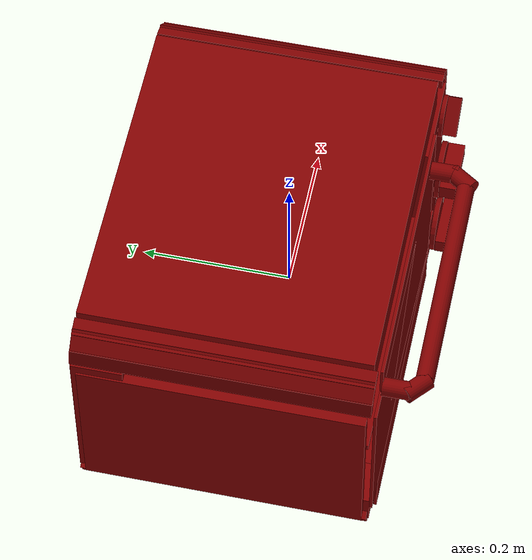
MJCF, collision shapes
<?xml version='1.0' encoding='UTF-8'?>
<mujoco model="model">
  <option timestep="0.002" gravity="0.0 0.0 -9.81"/>
  <compiler angle="radian"/>
  <asset>
    <mesh file="visuals/door.obj" name="door_vis"/>
    <mesh file="visuals/knob_function.obj" name="knob_function_vis"/>
    <mesh file="visuals/knob_temp.obj" name="knob_temp_vis"/>
    <mesh file="visuals/knob_time.obj" name="knob_time_vis"/>
    <mesh file="visuals/rack0.obj" name="rack0_vis"/>
    <mesh file="visuals/Body001.obj" name="Body001_vis"/>
    <mesh file="visuals/window.obj" name="window_vis"/>
    <texture file="visuals/T_BC001.png" name="Body001_material" type="2d"/>
    <material name="Body001_material" rgba="1 1 1 1.0" texture="Body001_material" shininess="0.1" specular="4"/>
    <texture file="visuals/T_BC001.png" name="door_material" type="2d"/>
    <material name="door_material" rgba="1 1 1 1.0" texture="door_material" shininess="0.1" specular="4"/>
    <material name="window_material" rgba="0.014353806152939796 0.014353806152939796 0.014353806152939796 0.800000011920929" shininess="0.5" specular="0.3103448502657381"/>
    <texture file="visuals/T_BC001.png" name="knob_function_material" type="2d"/>
    <material name="knob_function_material" rgba="1 1 1 1.0" texture="knob_function_material" shininess="0.1" specular="4"/>
    <texture file="visuals/T_BC001.png" name="knob_temp_material" type="2d"/>
    <material name="knob_temp_material" rgba="1 1 1 1.0" texture="knob_temp_material" shininess="0.1" specular="4"/>
    <texture file="visuals/T_BC001.png" name="knob_time_material" type="2d"/>
    <material name="knob_time_material" rgba="1 1 1 1.0" texture="knob_time_material" shininess="0.1" specular="4"/>
    <texture file="visuals/T_BC001.png" name="rack0_material" type="2d"/>
    <material name="rack0_material" rgba="1 1 1 1.0" texture="rack0_material" shininess="0.1" specular="4"/>
  </asset>
  <default>
    <default class="visual">
      <geom conaffinity="0" contype="0" group="1" type="mesh"/>
    </default>
    <default class="collision">
      <geom group="0" rgba="0.5 0 0 0.5"/>
    </default>
    <default class="spawn">
      <geom group="0" rgba="1 1 1 0.5" contype="0" conaffinity="0"/>
      <site group="0" rgba="1 1 1 0.5"/>
    </default>
    <default class="region">
      <geom group="1" conaffinity="0" contype="0" rgba="0 1 0 0"/>
    </default>
  </default>
  <worldbody>
    <body>
      <body name="object">
        <geom mesh="Body001_vis" type="mesh" solimp="0.998 0.998 0.001" solref="0.001 1" friction="0.95 0.3 0.1" class="visual" material="Body001_material"/>
        <geom class="collision" type="box" pos="-0.26778132 0.03379798 -0.00666182" size="0.006758843082934618 0.18849140405654907 0.12430750578641891" quat="1.0 0.0 0.0 0.0"/>
        <geom class="collision" type="box" pos="0.00106035 0.03725986 0.15857692" size="0.22587688267230988 0.1924075037240982 0.027097608894109726" quat="1.0 0.0 0.0 0.0"/>
        <geom class="collision" type="box" pos="-0.03314213 0.19532433 0.00248601" size="0.1881597489118576 0.034343622624874115 0.17576506733894348" quat="1.0 0.0 0.0 0.0"/>
        <geom class="collision" type="box" pos="0.20766197 0.03440951 0.00152799" size="0.06694191694259644 0.19525796175003052 0.13139718770980835" quat="1.0 0.0 0.0 0.0"/>
        <geom class="collision" type="box" pos="0.00212659 0.03327018 -0.13978714" size="0.2095605880022049 0.19639736413955688 0.045887477695941925" quat="1.0 0.0 0.0 0.0"/>
        <geom class="collision" type="box" pos="-0.24391517 0.19532433 0.00680922" size="0.027898481115698814 0.03434376046061516 0.12492994964122772" quat="1.0 0.0 0.0 0.0"/>
        <geom class="collision" type="box" pos="0.26607311 0.03440951 0.14935513" size="0.005701002664864063 0.19525861740112305 0.010545930825173855" quat="0.9905286431312561 0.0 -0.13730615377426147 0.0"/>
        <geom class="collision" type="box" pos="0.25400269 0.03440951 0.16654035" size="0.005701003130525351 0.19525861740112305 0.01522292010486126" quat="0.9298465847969055 0.0 -0.367947518825531 0.0"/>
        <geom class="collision" type="box" pos="0.23846222 0.03440951 0.17602463" size="0.005701002199202776 0.19525861740112305 0.011500685475766659" quat="0.8193817734718323 0.0 -0.5732482075691223 0.0"/>
        <geom class="collision" type="box" pos="-0.24034363 0.03440951 0.17599592" size="0.005701002199202776 0.19525861740112305 0.011416911147534847" quat="0.8193817734718323 0.0 0.5732482075691223 0.0"/>
        <geom class="collision" type="box" pos="-0.25289190 0.03440951 0.16654035" size="0.005701002199202776 0.19525861740112305 0.01522291824221611" quat="0.9298465847969055 0.0 0.36794745922088623 0.0"/>
        <geom class="collision" type="box" pos="-0.26550740 0.03440951 0.14909264" size="0.005701002664864063 0.19525861740112305 0.010818690061569214" quat="0.9905286431312561 0.0 0.13730616867542267 0.0"/>
        <geom class="collision" type="box" pos="0.22751614 0.03440951 -0.16219185" size="0.005701003130525351 0.19525861740112305 0.01522292010486126" quat="0.7667765617370605 0.0 0.6419140696525574 0.0"/>
        <geom class="collision" type="box" pos="0.25138164 0.03440951 -0.15252027" size="0.005701003130525351 0.19525861740112305 0.01522292010486126" quat="0.9076850414276123 0.0 0.41965213418006897 0.0"/>
        <geom class="collision" type="box" pos="0.26288372 0.03440951 -0.13877766" size="0.005701002664864063 0.19525861740112305 0.014126131311058998" quat="0.9724284410476685 0.0 0.23320159316062927 0.0"/>
        <geom class="collision" type="box" pos="-0.26244769 0.03440951 -0.13780016" size="0.005701002199202776 0.19525861740112305 0.01522291824221611" quat="0.9724283814430237 0.0 -0.23320169746875763 0.0"/>
        <geom class="collision" type="box" pos="-0.25044817 0.03440951 -0.15252027" size="0.005701003130525351 0.19525861740112305 0.01522292010486126" quat="0.9076850414276123 0.0 -0.4196521043777466 0.0"/>
        <geom class="collision" type="box" pos="-0.22658268 0.03440951 -0.16219185" size="0.005701003130525351 0.19525861740112305 0.01522292010486126" quat="0.7667765617370605 0.0 -0.6419140696525574 0.0"/>
        <geom class="collision" type="box" pos="-0.23572877 0.03327018 -0.11699777" size="0.0282937902957201 0.19639776647090912 0.023098217323422432" quat="1.0 0.0 0.0 0.0"/>
        <geom class="collision" type="box" pos="-0.24350122 0.03725986 0.14688568" size="0.020677294582128525 0.19240793585777283 0.015406474471092224" quat="1.0 0.0 0.0 0.0"/>
        <body name="door">
          <joint axis="1.0 0.0 0.0" pos="-0.03871398 -0.16636852 -0.16108307" limited="true" name="door_joint" range="0.0 1.3707963267948966" type="hinge" damping="1" frictionloss="10" armature=".01" stiffness="0.2" springref="-0.5"/>
          <geom mesh="door_vis" type="mesh" solimp="0.998 0.998 0.001" solref="0.001 1" friction="0.95 0.3 0.1" class="visual" material="door_material"/>
          <geom class="collision" type="box" pos="-0.04309046 -0.16596374 0.01004471" size="0.18725378811359406 0.00207867962308228 0.1716434359550476" quat="1.0 0.0 0.0 0.0" name="door_main"/>
          <geom class="collision" type="cylinder" pos="-0.22924399 -0.18574335 0.14745089" size="0.012058169580996037 0.01855606399476528" quat="0.7071067094802856 0.7071068286895752 0.0 0.0"/>
          <geom class="collision" type="cylinder" pos="0.11019767 -0.18574335 0.14745089" size="0.012058169580996037 0.01855606399476528" quat="0.7071067094802856 0.7071068286895752 0.0 0.0"/>
          <geom class="collision" type="cylinder" pos="-0.06002660 -0.21799715 0.14745089" size="0.012058175168931484 0.1497878134250641" quat="0.4999999701976776 0.5 0.5 0.5" name="door_handle_main"/>
          <geom class="collision" type="cylinder" pos="0.10195775 -0.21145536 0.14745089" size="0.012058169580996037 0.01855606399476528" quat="0.6759129762649536 0.6759130358695984 -0.20770560204982758 -0.20770560204982758"/>
          <geom class="collision" type="cylinder" pos="-0.22205186 -0.20978692 0.14745089" size="0.012058169580996037 0.01855606399476528" quat="0.6447701454162598 0.6447701454162598 0.29029548168182373 0.29029545187950134"/>
          <body name="window">
            <geom mesh="window_vis" type="mesh" solimp="0.998 0.998 0.001" solref="0.001 1" friction="0.95 0.3 0.1" class="visual" material="window_material"/>
            <geom class="collision" type="box" pos="-0.06299801 -0.16596374 0.01847745" size="0.2071613371372223 0.00207867962308228 0.11743299663066864" quat="1.0 0.0 0.0 0.0"/>
          </body>
        </body>
        <body name="knob_function">
          <joint axis="0.0 1.0 0.0" pos="0.20764306 -0.17349823 0.13813436" limited="true" name="knob_function_joint" range="0.0 4.468042885105484" type="hinge" damping="0.05" armature="1" frictionloss="0.75"/>
          <geom mesh="knob_function_vis" type="mesh" solimp="0.998 0.998 0.001" solref="0.001 1" friction="0.95 0.3 0.1" class="visual" material="knob_function_material"/>
          <geom class="collision" type="cylinder" pos="0.20778510 -0.16784149 0.13895833" size="0.028440658003091812 0.0028505877126008272" quat="0.7071067094802856 0.7071068286895752 0.0 0.0" friction="100 0.5 0.01"/>
          <geom class="collision" type="box" pos="0.20791364 -0.18010952 0.14026496" size="0.026221206411719322 0.009177393279969692 0.008678785525262356" quat="0.9421400427818298 2.305953601759161e-15 -0.3352195620536804 1.1474083905227417e-08" name="knob_function_main" friction="100 0.5 0.01"/>
        </body>
        <body name="knob_temp">
          <joint axis="0.0 1.0 0.0" pos="0.20766738 -0.17593736 -0.11817634" limited="true" name="knob_temp_joint" range="0.0 3.0543261909900767" type="hinge" damping="0.05" armature="1" frictionloss="0.75"/>
          <geom mesh="knob_temp_vis" type="mesh" solimp="0.998 0.998 0.001" solref="0.001 1" friction="0.95 0.3 0.1" class="visual" material="knob_temp_material"/>
          <geom class="collision" type="cylinder" pos="0.20778510 -0.16944499 -0.11821562" size="0.038067303597927094 0.0035079747904092073" quat="0.7071067094802856 0.7071068286895752 0.0 0.0" friction="100 0.5 0.01"/>
          <geom class="collision" type="box" pos="0.20766738 -0.18554677 -0.11885718" size="0.038112059235572815 0.01136291678994894 0.011615009978413582" quat="1.0 0.0 0.0 0.0" name="knob_temp_main" friction="100 0.5 0.01"/>
        </body>
        <body name="knob_time">
          <joint axis="0.0 1.0 0.0" pos="0.20765930 -0.17593639 0.01425010" limited="true" name="knob_time_joint" range="0.0 3.2288591161895095" type="hinge" damping="0.05" armature="1" frictionloss="0.75"/>
          <geom mesh="knob_time_vis" type="mesh" solimp="0.998 0.998 0.001" solref="0.001 1" friction="0.95 0.3 0.1" class="visual" material="knob_time_material"/>
          <geom class="collision" type="cylinder" pos="0.20778510 -0.17020275 0.01401777" size="0.03941282629966736 0.0035079747904092073" quat="0.7071067094802856 0.7071068286895752 0.0 0.0" friction="100 0.5 0.01"/>
          <geom class="collision" type="box" pos="0.20766738 -0.18554677 0.01469776" size="0.038112059235572815 0.01136291678994894 0.011615002527832985" quat="1.0 0.0 0.0 0.0" name="knob_time_main" friction="100 0.5 0.01"/>
        </body>
        <body name="rack0">
          <geom class="region" name="reg_rack0" type="box" pos="-0.0612784 -0.0026654599999999945 0.07402965" size="0.17366828 0.14764933000000002 0.05298871"/>
          <joint axis="0.0 -1.0 0.0" pos="-0.06080576 -0.00318860 0.01682601" limited="true" name="rack0_joint" range="0.0 0.25" type="slide" damping="1" frictionloss="1" armature=".01" stiffness="0.05"/>
          <geom mesh="rack0_vis" type="mesh" solimp="0.998 0.998 0.001" solref="0.001 1" friction="0.95 0.3 0.1" class="visual" material="rack0_material"/>
          <geom class="collision" type="box" pos="-0.06147957 -0.00280674 0.01101383" size="0.1825033724308014 0.15242891013622284 0.004496135748922825" quat="1.0 0.0 0.0 0.0"/>
        </body>
        <geom class="region" name="reg_int" type="box" pos="-0.06107025499999999 0.0007371899999999987 0.018696735" size="0.197743315 0.15570947 0.108321625"/>
        <geom class="region" name="reg_main" type="box" pos="-1.4999999992104662e-08 0.031624545000000004 -1.4999999992104662e-08" size="0.27560420500000005 0.199043585 0.186674745"/>
      </body>
    </body>
  </worldbody>
  <actuator>
    <motor name="door_joint_actuator" joint="door_joint" gear="50"/>
    <motor name="knob_function_joint_actuator" joint="knob_function_joint" gear="50"/>
    <motor name="knob_temp_joint_actuator" joint="knob_temp_joint" gear="50"/>
    <motor name="knob_time_joint_actuator" joint="knob_time_joint" gear="50"/>
    <motor name="rack0_joint_actuator" joint="rack0_joint" gear="50"/>
  </actuator>
</mujoco>
